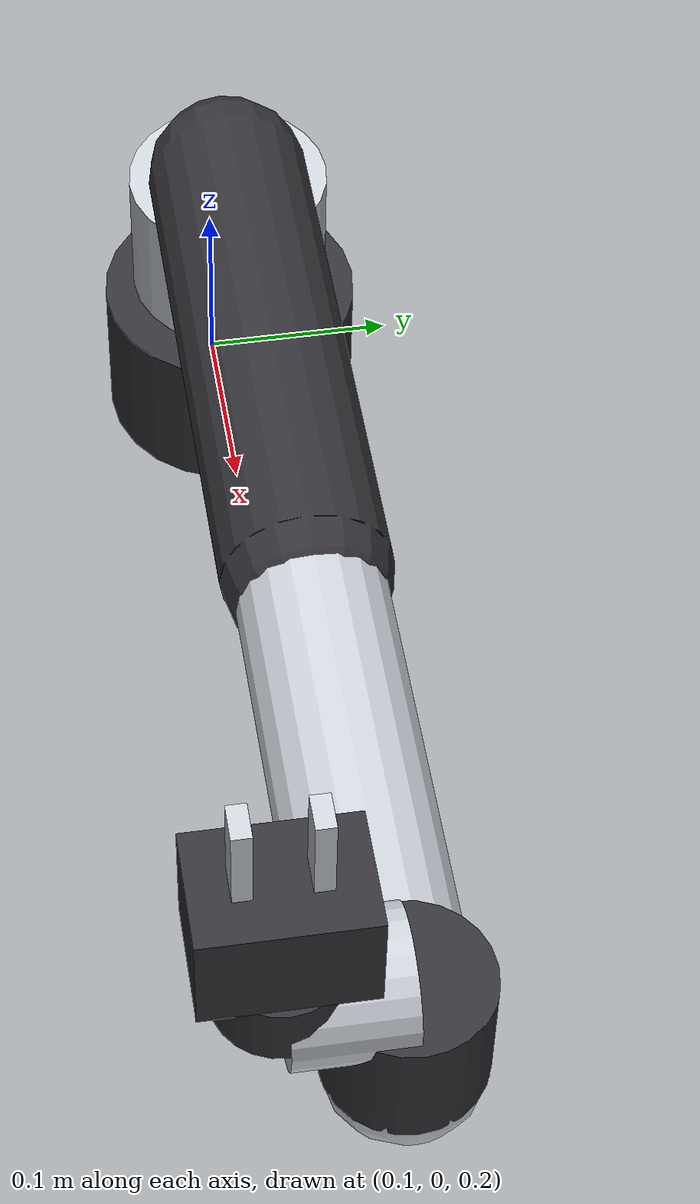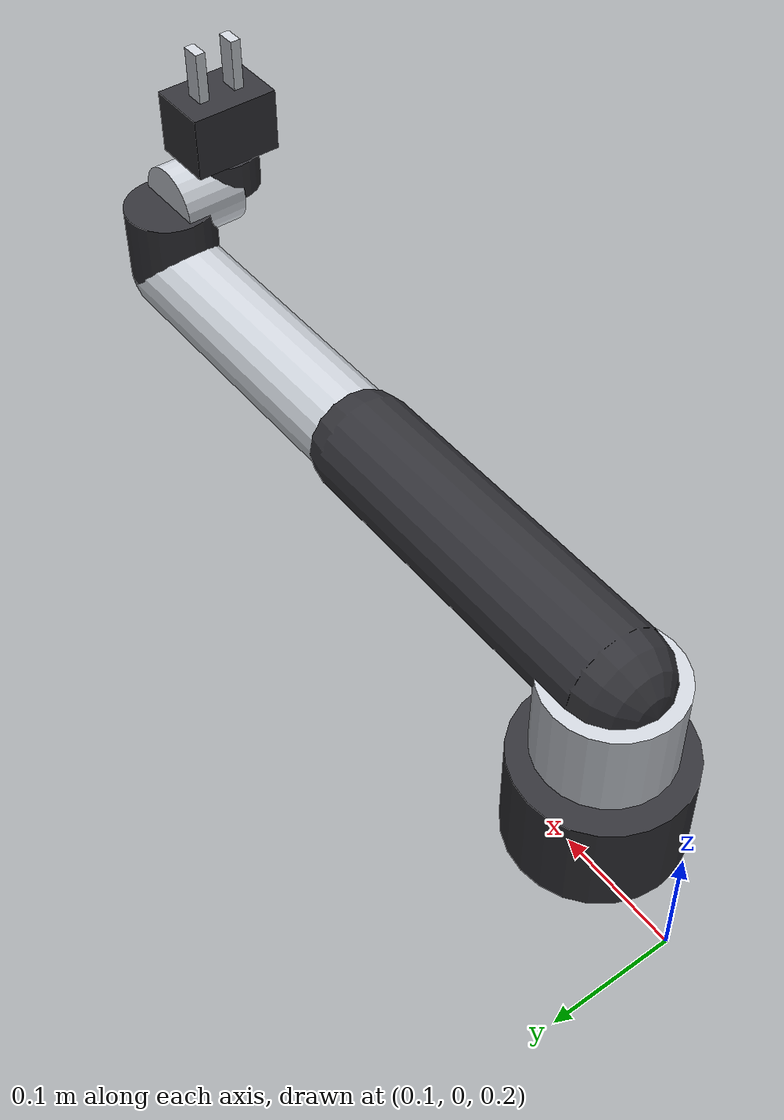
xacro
<?xml version="1.0" encoding="utf-8"?>
<!-- |    AgileX PiPER 6-DOF Manipulator with Two-Finger Parallel Gripper              | -->
<!-- |    Official Kinematic & Dynamic Specification for JARVIS-PiPER                  | -->
<!-- |    Compatible with ROS 2 Lyrical, Gazebo Harmonic, and NVIDIA Isaac Sim/Lab     | -->
<robot name="piper" xmlns:xacro="http://www.ros.org/wiki/xacro">

  <!-- World / Base Link Connection -->
  <link name="world"/>
  <joint name="world_to_base" type="fixed">
    <parent link="world"/>
    <child link="base_link"/>
    <origin xyz="0 0 0" rpy="0 0 0"/>
  </joint>

  <!-- Base Link -->
  <link name="base_link">
    <inertial>
      <origin xyz="-0.004736 0.000026 0.041452" rpy="0 0 0"/>
      <mass value="1.020"/>
      <inertia ixx="0.002674" ixy="-0.000001" ixz="-0.000174" iyy="0.002826" iyz="0.000000" izz="0.000896"/>
    </inertial>
    <visual>
      <origin xyz="0 0 0.04" rpy="0 0 0"/>
      <geometry>
        <cylinder radius="0.065" length="0.08"/>
      </geometry>
      <material name="piper_dark">
        <color rgba="0.2 0.2 0.22 1.0"/>
      </material>
    </visual>
    <collision>
      <origin xyz="0 0 0.04" rpy="0 0 0"/>
      <geometry>
        <cylinder radius="0.065" length="0.08"/>
      </geometry>
    </collision>
  </link>

  <!-- Joint 1: Base Yaw -->
  <joint name="joint1" type="revolute">
    <parent link="base_link"/>
    <child link="link1"/>
    <origin xyz="0 0 0.088" rpy="0 0 0"/>
    <axis xyz="0 0 1"/>
    <limit lower="-2.618" upper="2.618" effort="100.0" velocity="5.0"/>
    <dynamics damping="0.5" friction="0.1"/>
  </joint>

  <!-- Link 1: Shoulder Column -->
  <link name="link1">
    <inertial>
      <origin xyz="0.00012 0.00010 -0.00439" rpy="0 0 0"/>
      <mass value="0.710"/>
      <inertia ixx="0.000489" ixy="0.0" ixz="0.0" iyy="0.000405" iyz="0.0" izz="0.000440"/>
    </inertial>
    <visual>
      <origin xyz="0 0 0.035" rpy="0 0 0"/>
      <geometry>
        <cylinder radius="0.05" length="0.07"/>
      </geometry>
      <material name="piper_silver">
        <color rgba="0.8 0.82 0.85 1.0"/>
      </material>
    </visual>
    <collision>
      <origin xyz="0 0 0.035" rpy="0 0 0"/>
      <geometry>
        <cylinder radius="0.05" length="0.07"/>
      </geometry>
    </collision>
  </link>

  <!-- Joint 2: Shoulder Pitch (Firmware S-V1.6-3+ coordinate frame) -->
  <joint name="joint2" type="revolute">
    <parent link="link1"/>
    <child link="link2"/>
    <origin xyz="0 0 0.070" rpy="1.570796 0 0"/>
    <axis xyz="0 0 1"/>
    <limit lower="0.0" upper="3.14159" effort="100.0" velocity="5.0"/>
    <dynamics damping="0.5" friction="0.1"/>
  </joint>

  <!-- Link 2: Upper Arm -->
  <link name="link2">
    <inertial>
      <origin xyz="0.130 0.0 0.02" rpy="0 0 0"/>
      <mass value="1.250"/>
      <inertia ixx="0.00185" ixy="0.0" ixz="0.0" iyy="0.0125" iyz="0.0" izz="0.0131"/>
    </inertial>
    <visual>
      <origin xyz="0.130 0 0" rpy="0 1.570796 0"/>
      <geometry>
        <capsule radius="0.04" length="0.260"/>
      </geometry>
      <material name="piper_dark"/>
    </visual>
    <collision>
      <origin xyz="0.130 0 0" rpy="0 1.570796 0"/>
      <geometry>
        <capsule radius="0.04" length="0.260"/>
      </geometry>
    </collision>
  </link>

  <!-- Joint 3: Elbow Pitch -->
  <joint name="joint3" type="revolute">
    <parent link="link2"/>
    <child link="link3"/>
    <origin xyz="0.260 0 0" rpy="0 0 0"/>
    <axis xyz="0 0 1"/>
    <limit lower="-2.967" upper="0.0" effort="100.0" velocity="5.0"/>
    <dynamics damping="0.5" friction="0.1"/>
  </joint>

  <!-- Link 3: Forearm -->
  <link name="link3">
    <inertial>
      <origin xyz="0.125 0.0 0.0" rpy="0 0 0"/>
      <mass value="0.850"/>
      <inertia ixx="0.0011" ixy="0.0" ixz="0.0" iyy="0.0082" iyz="0.0" izz="0.0086"/>
    </inertial>
    <visual>
      <origin xyz="0.125 0 0" rpy="0 1.570796 0"/>
      <geometry>
        <capsule radius="0.035" length="0.250"/>
      </geometry>
      <material name="piper_silver"/>
    </visual>
    <collision>
      <origin xyz="0.125 0 0" rpy="0 1.570796 0"/>
      <geometry>
        <capsule radius="0.035" length="0.250"/>
      </geometry>
    </collision>
  </link>

  <!-- Joint 4: Forearm Roll / Pitch -->
  <joint name="joint4" type="revolute">
    <parent link="link3"/>
    <child link="link4"/>
    <origin xyz="0.250 0 0" rpy="-1.570796 0 0"/>
    <axis xyz="0 0 1"/>
    <limit lower="-1.745" upper="1.745" effort="100.0" velocity="5.0"/>
    <dynamics damping="0.3" friction="0.05"/>
  </joint>

  <!-- Link 4: Wrist 1 -->
  <link name="link4">
    <inertial>
      <origin xyz="0 0 0.03" rpy="0 0 0"/>
      <mass value="0.450"/>
      <inertia ixx="0.00035" ixy="0.0" ixz="0.0" iyy="0.00035" iyz="0.0" izz="0.00028"/>
    </inertial>
    <visual>
      <origin xyz="0 0 0.03" rpy="0 0 0"/>
      <geometry>
        <cylinder radius="0.035" length="0.06"/>
      </geometry>
      <material name="piper_dark"/>
    </visual>
    <collision>
      <origin xyz="0 0 0.03" rpy="0 0 0"/>
      <geometry>
        <cylinder radius="0.035" length="0.06"/>
      </geometry>
    </collision>
  </link>

  <!-- Joint 5: Wrist Pitch -->
  <joint name="joint5" type="revolute">
    <parent link="link4"/>
    <child link="link5"/>
    <origin xyz="0 0 0.060" rpy="1.570796 0 0"/>
    <axis xyz="0 0 1"/>
    <limit lower="-1.220" upper="1.220" effort="100.0" velocity="5.0"/>
    <dynamics damping="0.3" friction="0.05"/>
  </joint>

  <!-- Link 5: Wrist 2 -->
  <link name="link5">
    <inertial>
      <origin xyz="0 0 0.025" rpy="0 0 0"/>
      <mass value="0.380"/>
      <inertia ixx="0.00024" ixy="0.0" ixz="0.0" iyy="0.00024" iyz="0.0" izz="0.00018"/>
    </inertial>
    <visual>
      <origin xyz="0 0 0.025" rpy="0 0 0"/>
      <geometry>
        <cylinder radius="0.03" length="0.05"/>
      </geometry>
      <material name="piper_silver"/>
    </visual>
    <collision>
      <origin xyz="0 0 0.025" rpy="0 0 0"/>
      <geometry>
        <cylinder radius="0.03" length="0.05"/>
      </geometry>
    </collision>
  </link>

  <!-- Joint 6: Wrist Roll -->
  <joint name="joint6" type="revolute">
    <parent link="link5"/>
    <child link="link6"/>
    <origin xyz="0 0 0.050" rpy="-1.570796 0 0"/>
    <axis xyz="0 0 1"/>
    <limit lower="-2.0944" upper="2.0944" effort="100.0" velocity="3.0"/>
    <dynamics damping="0.2" friction="0.05"/>
  </joint>

  <!-- Link 6: Tool Flange -->
  <link name="link6">
    <inertial>
      <origin xyz="0 0 0.015" rpy="0 0 0"/>
      <mass value="0.220"/>
      <inertia ixx="0.00011" ixy="0.0" ixz="0.0" iyy="0.00011" iyz="0.0" izz="0.00009"/>
    </inertial>
    <visual>
      <origin xyz="0 0 0.015" rpy="0 0 0"/>
      <geometry>
        <cylinder radius="0.028" length="0.03"/>
      </geometry>
      <material name="piper_dark"/>
    </visual>
    <collision>
      <origin xyz="0 0 0.015" rpy="0 0 0"/>
      <geometry>
        <cylinder radius="0.028" length="0.03"/>
      </geometry>
    </collision>
  </link>

  <!-- Tool Flange to Gripper Base -->
  <joint name="joint6_to_gripper_base" type="fixed">
    <parent link="link6"/>
    <child link="gripper_base"/>
    <origin xyz="0 0 0.030" rpy="0 0 0"/>
  </joint>

  <!-- Gripper Base -->
  <link name="gripper_base">
    <inertial>
      <origin xyz="0 0 0.025" rpy="0 0 0"/>
      <mass value="0.320"/>
      <inertia ixx="0.0002" ixy="0.0" ixz="0.0" iyy="0.0002" iyz="0.0" izz="0.0001"/>
    </inertial>
    <visual>
      <origin xyz="0 0 0.025" rpy="0 0 0"/>
      <geometry>
        <box size="0.050 0.070 0.050"/>
      </geometry>
      <material name="piper_dark"/>
    </visual>
    <collision>
      <origin xyz="0 0 0.025" rpy="0 0 0"/>
      <geometry>
        <box size="0.050 0.070 0.050"/>
      </geometry>
    </collision>
  </link>

  <!-- Tool Center Point (TCP) -->
  <link name="tcp_link"/>
  <joint name="gripper_base_to_tcp" type="fixed">
    <parent link="gripper_base"/>
    <child link="tcp_link"/>
    <origin xyz="0 0 0.090" rpy="0 0 0"/>
  </joint>

  <!-- Wrist Camera Optical Frame -->
  <link name="wrist_camera_link"/>
  <joint name="gripper_to_camera" type="fixed">
    <parent link="gripper_base"/>
    <child link="wrist_camera_link"/>
    <origin xyz="0.035 0 0.045" rpy="0 -0.2618 0"/>
  </joint>

  <!-- Gripper Finger Left (Joint 7: Prismatic 0 to 0.035m) -->
  <joint name="joint7" type="prismatic">
    <parent link="gripper_base"/>
    <child link="link7"/>
    <origin xyz="0 0.015 0.050" rpy="0 0 0"/>
    <axis xyz="0 1 0"/>
    <limit lower="0.0" upper="0.035" effort="10.0" velocity="1.0"/>
    <dynamics damping="0.1" friction="0.02"/>
  </joint>

  <link name="link7">
    <inertial>
      <origin xyz="0 0 0.02" rpy="0 0 0"/>
      <mass value="0.045"/>
      <inertia ixx="0.00001" ixy="0" ixz="0" iyy="0.00001" iyz="0" izz="0.000005"/>
    </inertial>
    <visual>
      <origin xyz="0 0 0.02" rpy="0 0 0"/>
      <geometry>
        <box size="0.015 0.008 0.040"/>
      </geometry>
      <material name="piper_silver"/>
    </visual>
    <collision>
      <origin xyz="0 0 0.02" rpy="0 0 0"/>
      <geometry>
        <box size="0.015 0.008 0.040"/>
      </geometry>
    </collision>
  </link>

  <!-- Gripper Finger Right (Joint 8: Prismatic 0 to 0.035m mirrored) -->
  <joint name="joint8" type="prismatic">
    <parent link="gripper_base"/>
    <child link="link8"/>
    <origin xyz="0 -0.015 0.050" rpy="0 0 0"/>
    <axis xyz="0 -1 0"/>
    <limit lower="0.0" upper="0.035" effort="10.0" velocity="1.0"/>
    <dynamics damping="0.1" friction="0.02"/>
  </joint>

  <link name="link8">
    <inertial>
      <origin xyz="0 0 0.02" rpy="0 0 0"/>
      <mass value="0.045"/>
      <inertia ixx="0.00001" ixy="0" ixz="0" iyy="0.00001" iyz="0" izz="0.000005"/>
    </inertial>
    <visual>
      <origin xyz="0 0 0.02" rpy="0 0 0"/>
      <geometry>
        <box size="0.015 0.008 0.040"/>
      </geometry>
      <material name="piper_silver"/>
    </visual>
    <collision>
      <origin xyz="0 0 0.02" rpy="0 0 0"/>
      <geometry>
        <box size="0.015 0.008 0.040"/>
      </geometry>
    </collision>
  </link>

  <!-- Optional Ranger Mini Mobile Base Mount -->
  <link name="ranger_mini_mount"/>
  <joint name="ranger_mount_to_arm" type="fixed">
    <parent link="ranger_mini_mount"/>
    <child link="world"/>
    <origin xyz="0.180 0 0.250" rpy="0 0 0"/>
  </joint>

</robot>
